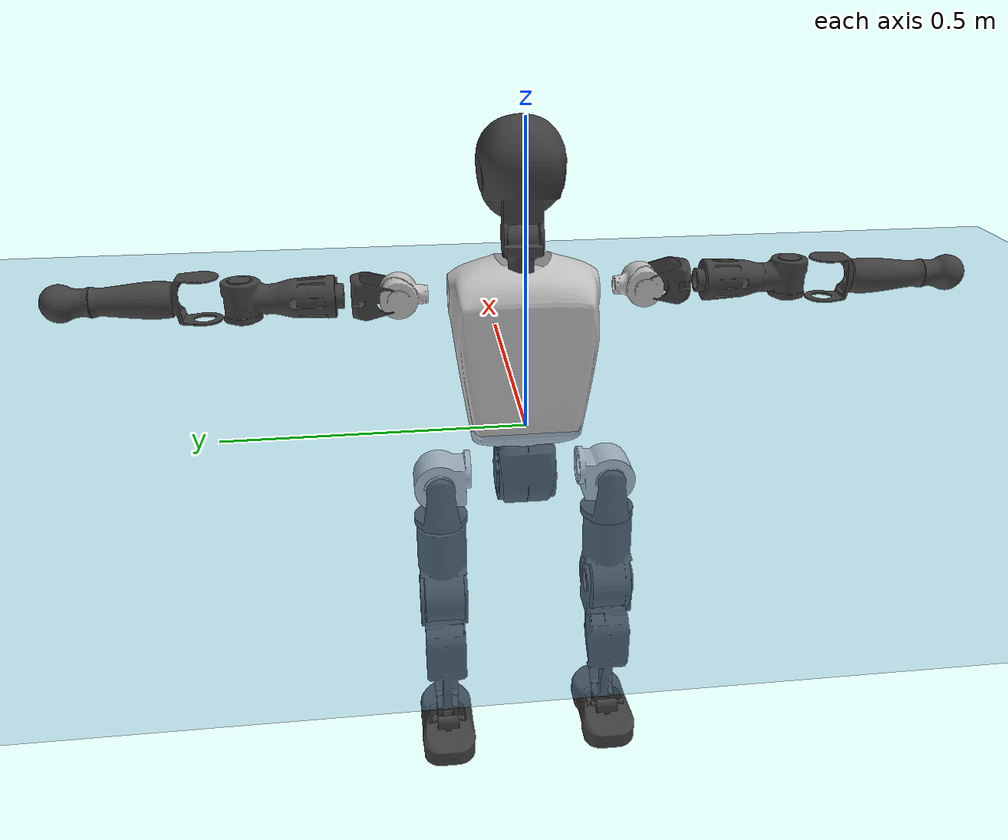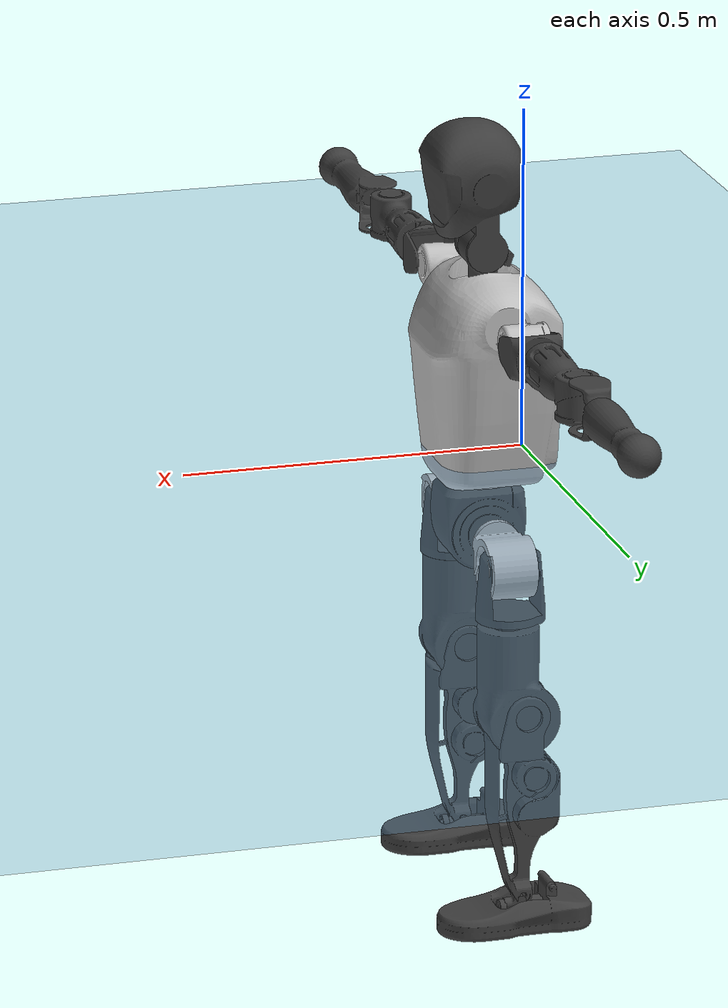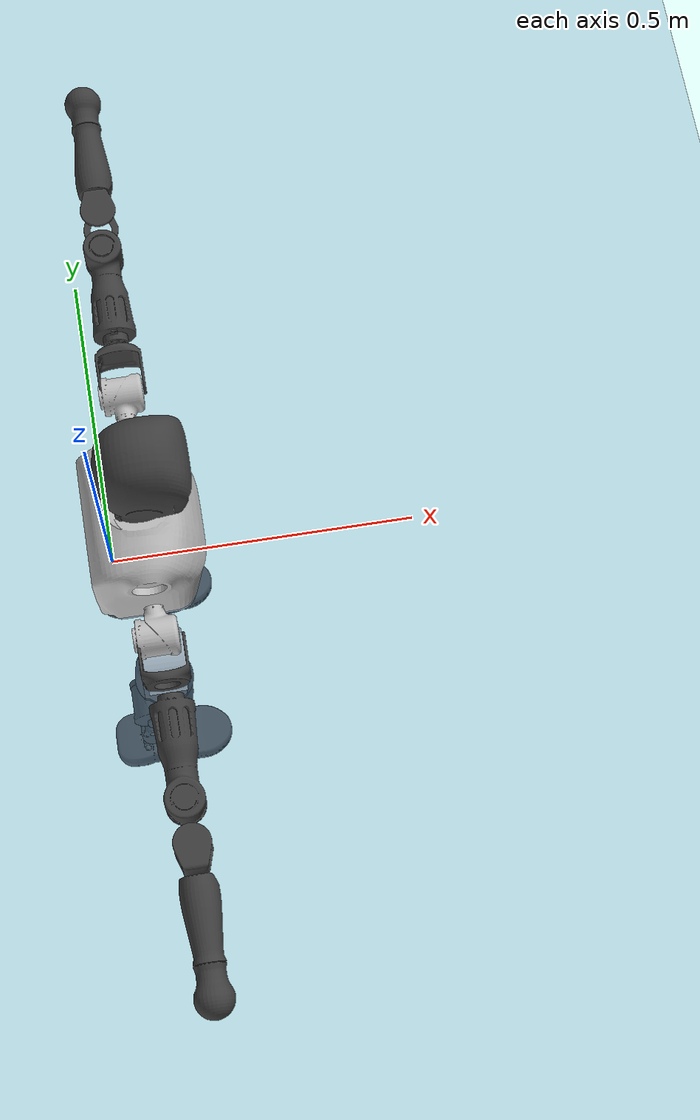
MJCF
<mujoco model="T1">
  <compiler angle="radian" assetdir="assets" balanceinertia="true" inertiafromgeom="false"/>

  <option timestep="0.005" density="1.2" viscosity="2e-05"/>

  <size nkey="1"/>

  <visual>
    <quality shadowsize="8192"/>
    <map shadowclip="0.5"/>
  </visual>

  <default>
    <default class="/">
      <joint armature="0.01" damping="0.01" frictionloss="0.1"/>
      <geom contype="0" conaffinity="0" group="1" solref="-1000 -80"/>
      <site size="0.01 0.005 0.005" group="5"/>
      <general forcelimited="true" biastype="affine" gainprm="25" biasprm="0 -25 -0.6"/>
      <default class="t1">
        <geom rgba="0.25 0.25 0.25 1"/>
        <default class="visual">
          <geom type="mesh" group="2"/>
        </default>
        <default class="collision">
          <geom group="3"/>
        </default>
        <default class="foot">
          <geom size="0.1115 0.05 0.015" type="box" condim="6" group="4" priority="1" solimp="0.015 1 0.015"/>
        </default>
        <default class="reward_collision_sphere">
          <geom group="5" rgba="1 0 0 1"/>
        </default>
      </default>
    </default>
  </default>

  <asset>
    <texture type="skybox" colorspace="auto" name="//unnamed_texture_0" builtin="gradient" rgb1="0.95 0.95 0.95" rgb2="0.95 0.95 0.95" width="100" height="600"/>
    <texture type="2d" colorspace="auto" name="texplane" builtin="checker" rgb1="0.345 0.575 0.748" rgb2="0.345 0.575 0.748" markrgb="1 1 1" width="512" height="512"/>
    <material name="MatPlane" class="/" texture="texplane" texuniform="true" texrepeat="2 2" specular="0.9"/>
    <mesh name="Trunk" class="/" file="Trunk.stl"/>
    <mesh name="H1" class="/" file="H1.stl"/>
    <mesh name="H2" class="/" file="H2.stl"/>
    <mesh name="AL1" class="/" file="AL1.stl"/>
    <mesh name="AL2" class="/" file="AL2.stl"/>
    <mesh name="AL3" class="/" file="AL3.stl"/>
    <mesh name="left_hand_link" class="/" file="left_hand_link.stl"/>
    <mesh name="AR1" class="/" file="AR1.stl"/>
    <mesh name="AR2" class="/" file="AR2.stl"/>
    <mesh name="AR3" class="/" file="AR3.stl"/>
    <mesh name="right_hand_link" class="/" file="right_hand_link.stl"/>
    <mesh name="Waist" class="/" file="Waist.stl"/>
    <mesh name="Hip_Pitch_Left" class="/" file="Hip_Pitch_Left.stl"/>
    <mesh name="Hip_Roll_Left" class="/" file="Hip_Roll_Left.stl"/>
    <mesh name="Hip_Yaw_Left" class="/" file="Hip_Yaw_Left.stl"/>
    <mesh name="Shank_Left" class="/" file="Shank_Left.stl"/>
    <mesh name="Ankle_Cross_Left" class="/" file="Ankle_Cross_Left.stl"/>
    <mesh name="left_foot_link" class="/" file="left_foot_link.stl"/>
    <mesh name="Hip_Pitch_Right" class="/" file="Hip_Pitch_Right.stl"/>
    <mesh name="Hip_Roll_Right" class="/" file="Hip_Roll_Right.stl"/>
    <mesh name="Hip_Yaw_Right" class="/" file="Hip_Yaw_Right.stl"/>
    <mesh name="Shank_Right" class="/" file="Shank_Right.stl"/>
    <mesh name="Ankle_Cross_Right" class="/" file="Ankle_Cross_Right.stl"/>
    <mesh name="right_foot_link" class="/" file="right_foot_link.stl"/>
  </asset>

  <worldbody>
    <geom name="floor" class="/" size="100 100 0.125" type="plane" group="0" material="MatPlane"/>
    <light name="toplight_shadow" class="/" pos="0 0 5" dir="0.0990148 0.0990148 -0.990148" type="directional" ambient="0.04 0.04 0.04" diffuse="0.55 0.55 0.55" specular="0.12 0.12 0.12"/>
    <light name="toplight_fill" class="/" pos="0 0 5" dir="0.0990148 0.0990148 -0.990148" type="directional" castshadow="false" ambient="0.04 0.04 0.04" diffuse="0.3 0.3 0.3" specular="0.08 0.08 0.08"/>
    <body name="trunk" childclass="t1" pos="0.000372604 -0.00206281 -0.00224921" quat="1 -1.10489e-06 -1.39232e-05 3.69827e-05">
      <inertial pos="0.0548365 -0.00504466 0.102322" quat="0.999954 0.000183295 -0.0095268 -0.000958995" mass="17.2728" diaginertia="0.0901517 0.459896 0.0537904"/>
      <joint name="//unnamed_joint_0" type="free" armature="0" damping="0" frictionloss="0"/>
      <geom name="//unnamed_geom_1" class="visual" rgba="0.76 0.76 0.76 1" mesh="Trunk"/>
      <geom name="//unnamed_geom_2" class="collision" size="0.085881 0.114508 0.171762" pos="0.0600014 0 0.12036" type="box"/>
      <geom name="//unnamed_geom_3" class="reward_collision_sphere" size="0.131684" pos="0.0600014 0 0.1003"/>
      <geom name="//unnamed_geom_4" class="reward_collision_sphere" size="0.0171762" pos="0.0600014 0.121738 0"/>
      <geom name="//unnamed_geom_5" class="reward_collision_sphere" size="0.0171762" pos="0.0600014 -0.121738 0"/>
      <geom name="//unnamed_geom_6" class="reward_collision_sphere" size="0.0171762" pos="0.0600014 0.153247 0.180541"/>
      <geom name="//unnamed_geom_7" class="reward_collision_sphere" size="0.0171762" pos="0.0600014 -0.153247 0.180541"/>
      <site name="imu" pos="-0.00300006 -0.00663114 0.0124836" size="0.0114508"/>
      <camera name="track" pos="0 -2.86443 0" quat="0.707107 0.707107 0 0" mode="trackcom"/>
      <camera name="ego_camera" pos="0.122003 0 0.421262" quat="-0.5 -0.5 0.5 0.5"/>
      <body name="H1" pos="0.0598031 0.00236549 0.240685" quat="1 1.74493e-06 -6.03777e-05 7.99151e-05">
        <inertial pos="-0.0010836 -0.00716724 0.0552032" quat="0.772031 -0.0145183 -0.00349433 0.635409" mass="0.669936" diaginertia="0.000251087 0.00134497 0.000149533"/>
        <joint name="AAHead_yaw" pos="0 0 0" axis="-0.0079839 -0.00360877 0.999962" range="-1.56631 1.63724" armature="0.0107942" damping="0.00570612" frictionloss="0.146422"/>
        <geom name="//unnamed_geom_8" class="visual" mesh="H1"/>
        <body name="H2" pos="0.00173762 -0.00224451 0.0640117" quat="1 6.16546e-05 -0.000390809 -2.6532e-05">
          <inertial pos="0.00479257 0.00529927 0.0967442" quat="0.989974 0.0898154 -0.0811061 -0.0728421" mass="0.94944" diaginertia="0.00203394 0.011678 0.00173708"/>
          <joint name="Head_pitch" pos="0 0 0" axis="0.00264461 -0.999932 0.0113707" range="-1.23561 0.362664" armature="0.0120342" damping="0.00561465" frictionloss="0.115241"/>
          <geom name="//unnamed_geom_9" class="visual" mesh="H2"/>
          <geom name="//unnamed_geom_10" class="collision" size="0.0916064" pos="0.0100002 0 0.11033"/>
          <geom name="//unnamed_geom_11" class="reward_collision_sphere" size="0.103057" pos="0.0200005 0 0.1003"/>
        </body>
      </body>
      <body name="AL1" pos="0.0582317 0.154146 0.218889" quat="0.999998 0.000119569 0.00155742 0.00113121">
        <inertial pos="-0.00127328 0.0628794 -0.00191963" quat="0.490647 0.498764 -0.5168 0.493374" mass="0.783769" diaginertia="0.00138964 0.00737722 0.000298727"/>
        <joint name="Left_Shoulder_Pitch" pos="0 0 0" axis="-0.00141078 0.999999 -0.000404291" range="-3.25199 1.17475" armature="0.0111981" damping="0" frictionloss="0.1128"/>
        <geom name="//unnamed_geom_12" class="visual" rgba="0.76 0.76 0.76 1" mesh="AL1"/>
        <body name="AL2" pos="0.00132049 0.0652325 0.000320655" quat="1 9.24776e-05 -4.99948e-05 0.000214851">
          <inertial pos="0.000373263 0.049528 0.00067152" quat="0.482061 0.494789 -0.506679 0.515827" mass="0.248411" diaginertia="0.000406989 0.00211057 0.000174473"/>
          <joint name="Left_Shoulder_Roll" pos="0 0 0" axis="-0.999975 -0.00390166 0.00587139" stiffness="0.0017512" range="-1.56444 1.74822" armature="0.0131766" damping="0.0110222" frictionloss="0.100261"/>
          <geom name="//unnamed_geom_13" class="visual" mesh="AL2"/>
          <body name="AL3" pos="6.02489e-05 0.0813652 0.00113404" quat="1 -8.30066e-05 -0.000174119 0.000148873">
            <inertial pos="0.00392807 0.123188 -0.000485152" quat="0.706077 0.708134 0.00103914 -0.000317708" mass="1.47177" diaginertia="0.0121585 0.0774551 0.000633093"/>
            <joint name="Left_Elbow_Pitch" pos="0 0 0" axis="0.00542505 -0.99998 -0.0031249" stiffness="0.00294184" range="-2.22931 2.19549" armature="0.00989659" damping="0.0085221" frictionloss="0.115522"/>
            <geom name="//unnamed_geom_14" class="visual" mesh="AL3"/>
            <geom name="//unnamed_geom_15" class="collision" size="0.0343524 0.085881" pos="0 0.0716107 0" quat="0.707105 0.707108 0 0" type="cylinder"/>
            <geom name="//unnamed_geom_16" class="reward_collision_sphere" size="0.0412229"/>
            <body name="left_hand_link" pos="0.00151793 0.207158 0.0044637" quat="0.999999 0.00114106 -7.84231e-05 -0.000297901">
              <inertial pos="0.000745628 0.15486 0.00188488" quat="0.705749 0.708362 -0.0118428 -0.000678561" mass="0.505633" diaginertia="0.00836055 0.0489017 0.000212389"/>
              <joint name="Left_Elbow_Yaw" pos="0 0 0" axis="-0.0045735 0.00782176 0.999959" range="-2.36982 -0.0129527" armature="0.0116694" damping="0.0340578" frictionloss="0.105264"/>
              <geom name="//unnamed_geom_17" class="visual" mesh="left_hand_link"/>
              <geom name="//unnamed_geom_18" class="collision" size="0.0343524 0.100195" pos="0 0.186188 0" quat="0.707105 0.707108 0 0" type="cylinder"/>
              <geom name="//unnamed_geom_19" class="reward_collision_sphere" size="0.057254"/>
              <geom name="//unnamed_geom_20" class="reward_collision_sphere" size="0.0400778" pos="0 0.157544 0"/>
              <geom name="//unnamed_geom_21" class="reward_collision_sphere" size="0.0400778" pos="0 0.307926 0"/>
            </body>
          </body>
        </body>
      </body>
      <body name="AR1" pos="0.059677 -0.151143 0.221876" quat="1 -1.01863e-05 0.000382128 1.82539e-05">
        <inertial pos="-0.00107366 -0.0649763 0.00377607" quat="0.513488 0.502624 -0.502002 0.481345" mass="0.789787" diaginertia="0.0013918 0.00810477 0.00030187"/>
        <joint name="Right_Shoulder_Pitch" pos="0 0 0" axis="-0.000781706 -0.999996 -0.00257713" range="-1.21413 3.32054" armature="0.0124017" damping="0.0241887" frictionloss="0.139155"/>
        <geom name="//unnamed_geom_22" class="visual" rgba="0.76 0.76 0.76 1" mesh="AR1"/>
        <body name="AR2" pos="0.00419857 -0.0670185 0.00249034" quat="1 -0.000660003 2.9601e-05 -4.40575e-05">
          <inertial pos="0.00320435 -0.0492177 0.0028844" quat="0.511303 0.4951 -0.496736 0.496687" mass="0.251214" diaginertia="0.000414071 0.00219434 0.000184151"/>
          <joint name="Right_Shoulder_Roll" pos="0 0 0" axis="-0.999967 -0.00797129 -0.00136733" range="-1.73316 1.57749" armature="0.0112941" damping="0.0323463" frictionloss="0.128765"/>
          <geom name="//unnamed_geom_23" class="visual" mesh="AR2"/>
          <body name="AR3" pos="0.00231003 -0.0848578 -0.0019256" quat="1 -0.000120393 3.95339e-05 8.4199e-05">
            <inertial pos="0.00227243 -0.123765 -0.00239013" quat="0.708081 0.706131 -3.04176e-05 -8.58564e-05" mass="1.54219" diaginertia="0.0129607 0.0821012 0.000616574"/>
            <joint name="Right_Elbow_Pitch" pos="0 0 0" axis="-0.000749866 0.999944 -0.0105798" range="-2.31375 2.31353" armature="0.0117017" damping="0.00938607" frictionloss="0.128604"/>
            <geom name="//unnamed_geom_24" class="visual" mesh="AR3"/>
            <geom name="//unnamed_geom_25" class="collision" size="0.0343524 0.085881" pos="0 -0.0716107 0" quat="0.707105 0.707108 0 0" type="cylinder"/>
            <geom name="//unnamed_geom_26" class="reward_collision_sphere" size="0.0412229"/>
            <body name="right_hand_link" pos="0.0017591 -0.211874 -0.00484764" quat="1 8.05495e-05 -4.12507e-05 -8.71955e-06">
              <inertial pos="0.000365319 -0.157481 0.00252773" quat="0.709569 0.704536 0.00936252 0.00728695" mass="0.480657" diaginertia="0.00849071 0.0509938 0.000216478"/>
              <joint name="Right_Elbow_Yaw" pos="0 0 0" axis="-0.000701146 5.35344e-06 1" range="-0.00520554 2.44622" armature="0.0106652" damping="0.0203973" frictionloss="0.092052"/>
              <geom name="//unnamed_geom_27" class="visual" mesh="right_hand_link"/>
              <geom name="//unnamed_geom_28" class="collision" size="0.0343524 0.100195" pos="0 -0.186188 0" quat="0.707105 0.707108 0 0" type="cylinder"/>
              <geom name="//unnamed_geom_29" class="reward_collision_sphere" size="0.057254"/>
              <geom name="//unnamed_geom_30" class="reward_collision_sphere" size="0.0400778" pos="0 -0.157544 0"/>
              <geom name="//unnamed_geom_31" class="reward_collision_sphere" size="0.0400778" pos="0 -0.307926 0"/>
            </body>
          </body>
        </body>
      </body>
      <body name="Waist" pos="0.0632453 -0.00385673 -0.110998" quat="0.999999 0.000816434 -0.000459453 -0.000460621">
        <inertial pos="0.0081109 0.00229885 0.0100411" quat="0.985257 -0.00102404 -0.17107 0.00188266" mass="3.90718" diaginertia="0.00566448 0.031452 0.00491245"/>
        <joint name="Waist" pos="0 0 0" axis="1.71113e-05 -0.0116941 0.999932" range="-1.58376 1.55399" armature="0.0111302" damping="0.0154081" frictionloss="0.114912"/>
        <geom name="//unnamed_geom_32" class="visual" mesh="Waist"/>
        <body name="Hip_Pitch_Left" pos="0.00302321 0.152201 0.00326411" quat="0.999999 0.00137788 -0.00012036 0.000527398">
          <inertial pos="-0.000313203 -0.0122027 -0.0187748" quat="0.975077 0.221174 0.0174825 0.00103467" mass="1.44377" diaginertia="0.00177906 0.00867649 0.00124765"/>
          <joint name="Left_Hip_Pitch" pos="0 0 0" axis="0.00255 0.999997 1.30274e-05" stiffness="0.00162894" range="-1.80572 1.49632" armature="0.00901578" damping="0.0159402" frictionloss="0.126679"/>
          <geom name="//unnamed_geom_33" class="visual" rgba="0.76 0.76 0.76 1" mesh="Hip_Pitch_Left"/>
          <body name="Hip_Roll_Left" pos="-0.00367381 -0.00134732 -0.0200533" quat="1 -0.000202071 0.000555737 -0.000463888">
            <inertial pos="1.39768e-05 0.000402715 -0.0524862" quat="0.699135 0.0088105 -0.0183768 0.714699" mass="0.625041" diaginertia="0.00183286 0.00949821 0.000531388"/>
            <joint name="Left_Hip_Roll" pos="0 0 0" axis="-0.999923 0.000330603 0.0124384" range="-1.57026 0.249162" armature="0.00949945" damping="0" frictionloss="0.110933"/>
            <geom name="//unnamed_geom_34" class="visual" mesh="Hip_Roll_Left"/>
            <geom name="//unnamed_geom_35" class="reward_collision_sphere" size="0.0629794"/>
            <body name="Hip_Yaw_Left" pos="0.000531049 -1.92439e-05 -0.0883918" quat="0.999999 -0.000310078 0.00120218 7.69264e-05">
              <inertial pos="-0.00466045 0.00234144 -0.091998" quat="0.692831 -0.0319522 -0.0237685 0.719999" mass="3.15951" diaginertia="0.0253294 0.160348 0.00259293"/>
              <joint name="Left_Hip_Yaw" pos="0 0 0" axis="0.00826454 -0.00398148 -0.999958" range="-1.01758 0.943307" armature="0.0111882" damping="0" frictionloss="0.119404"/>
              <geom name="//unnamed_geom_36" class="visual" mesh="Hip_Yaw_Left"/>
              <geom name="//unnamed_geom_37" class="collision" size="0.057254 0.0916064" type="cylinder"/>
              <body name="Shank_Left" pos="-0.0187461 0.000858634 -0.127713" quat="1 -0.000564942 -0.000284533 0.000277999">
                <inertial pos="-0.00834968 -0.00204663 -0.127763" quat="0.997685 0.00106477 -0.0229281 0.0640191" mass="2.76121" diaginertia="0.0342224 0.201756 0.00193607"/>
                <joint name="Left_Knee_Pitch" pos="0 0 0" axis="-0.0153202 0.999822 -0.0110265" range="0.0226056 2.30927" armature="0.0118111" damping="0.00612241" frictionloss="0.10012"/>
                <geom name="//unnamed_geom_38" class="visual" mesh="Shank_Left"/>
                <geom name="//unnamed_geom_39" class="collision" size="0.057254 0.085881" pos="0 0 -0.12036" type="cylinder"/>
                <geom name="//unnamed_geom_40" class="reward_collision_sphere" size="0.0744302"/>
                <body name="Ankle_Cross_Left" pos="0.00334639 0.00130098 -0.284519" quat="0.999999 -6.992e-05 0.00109421 -7.63903e-05">
                  <inertial pos="-0.00513179 -0.0010001 -0.00725309" quat="0.441925 0.556259 0.54907 0.440228" mass="0.104893" diaginertia="2.75173e-05 0.000151144 1.12992e-05"/>
                  <joint name="Left_Ankle_Pitch" pos="0 0 0" axis="-0.000240718 1 0.000339814" stiffness="0.00398191" range="-0.943691 0.395337" armature="0.01093" damping="0" frictionloss="0.128016"/>
                  <geom name="//unnamed_geom_41" class="visual" mesh="Ankle_Cross_Left"/>
                  <body name="left_foot_link" pos="-0.00256065 0.00057166 -0.016761" quat="1 0.000380086 0.00039638 0.000294737">
                    <inertial pos="0.00106031 0.000403424 -0.00707518" quat="-0.00565686 0.61266 0.00143568 0.790325" mass="1.07803" diaginertia="0.00289998 0.0149529 0.00213934"/>
                    <joint name="Left_Ankle_Roll" pos="0 0 0" axis="-0.999926 0.0101971 -0.00665718" range="-0.416063 0.439834" armature="0.0112541" damping="0" frictionloss="0.116172"/>
                    <geom name="//unnamed_geom_42" class="visual" mesh="left_foot_link"/>
                    <geom name="left_foot" class="foot" size="0.122465 0.0449126 0.0181872" pos="0.0100002 0 -0.0150451"/>
                    <geom name="//unnamed_geom_44" class="reward_collision_sphere" size="0.0595442" pos="0.0100002 0 -0.0150451"/>
                    <geom name="//unnamed_geom_45" class="reward_collision_sphere" size="0.0343524" pos="0.0950022 -0.0329409 -0.0150451"/>
                    <geom name="//unnamed_geom_46" class="reward_collision_sphere" size="0.0343524" pos="-0.0700017 -0.0329409 -0.0150451"/>
                    <site name="left_foot" class="foot" pos="0.0100002 0 -0.0150451" size="0.0114508"/>
                  </body>
                </body>
              </body>
            </body>
          </body>
        </body>
        <body name="Hip_Pitch_Right" pos="-0.00236918 -0.14936 0.00230675" quat="0.999999 -0.00143182 -0.000604105 0.000635971">
          <inertial pos="0.00229071 0.00845769 -0.02081" quat="0.973937 -0.226293 0.00735054 -0.0135655" mass="1.52825" diaginertia="0.0017976 0.00848102 0.00134527"/>
          <joint name="Right_Hip_Pitch" pos="0 0 0" axis="-0.0107459 -0.999941 0.00178522" stiffness="0.00852612" range="-1.57819 1.89642" armature="0.0116962" damping="0.00983744" frictionloss="0.110404"/>
          <geom name="//unnamed_geom_47" class="visual" rgba="0.76 0.76 0.76 1" mesh="Hip_Pitch_Right"/>
          <body name="Hip_Roll_Right" pos="-0.00432147 9.95308e-05 -0.0174398" quat="1 -1.485e-05 0.00029018 0.000457815">
            <inertial pos="0.000202149 0.00215313 -0.0539022" quat="0.699176 -0.0250852 -0.00206886 0.714506" mass="0.572029" diaginertia="0.00173578 0.00899312 0.000535757"/>
            <joint name="Right_Hip_Roll" pos="0 0 0" axis="-0.999964 0.00651261 -0.00545228" range="-0.307519 1.51334" armature="0.011249" damping="0.00503544" frictionloss="0.119743"/>
            <geom name="//unnamed_geom_48" class="visual" mesh="Hip_Roll_Right"/>
            <geom name="//unnamed_geom_49" class="reward_collision_sphere" size="0.0629794"/>
            <body name="Hip_Yaw_Right" pos="-0.000957192 -0.00246295 -0.0794946" quat="0.999999 -7.81404e-05 -0.000754769 -0.000765417">
              <inertial pos="-0.00788025 -0.000924839 -0.085656" quat="0.714781 -0.0240266 -0.0419426 0.697676" mass="3.46281" diaginertia="0.0267849 0.158219 0.00270194"/>
              <joint name="Right_Hip_Yaw" pos="0 0 0" axis="0.0160485 0.0233005 -0.9996" range="-0.965789 1.04814" armature="0.0099209" damping="0.0337004" frictionloss="0.114394"/>
              <geom name="//unnamed_geom_50" class="visual" mesh="Hip_Yaw_Right"/>
              <geom name="//unnamed_geom_51" class="collision" size="0.057254 0.0916064" type="cylinder"/>
              <body name="Shank_Right" pos="-0.0128457 -0.00156032 -0.136839" quat="1 0.000153548 -4.33106e-05 -0.000185041">
                <inertial pos="-0.0055145 -0.00176777 -0.121443" quat="0.999261 -0.00631178 -0.0279398 -0.0256505" mass="2.49713" diaginertia="0.0318479 0.195192 0.00185154"/>
                <joint name="Right_Knee_Pitch" pos="0 0 0" axis="0.00503126 -0.999961 -0.00730651" range="-2.4117 0.0319715" armature="0.00896598" damping="0.0098677" frictionloss="0.113921"/>
                <geom name="//unnamed_geom_52" class="visual" mesh="Shank_Right"/>
                <geom name="//unnamed_geom_53" class="collision" size="0.057254 0.085881" pos="0 0 -0.12036" type="cylinder"/>
                <geom name="//unnamed_geom_54" class="reward_collision_sphere" size="0.0744302"/>
                <body name="Ankle_Cross_Right" pos="-0.000292226 0.00220802 -0.277613" quat="1 -2.74801e-05 5.01248e-05 2.71411e-05">
                  <inertial pos="-0.00316448 0.000145904 -0.00820679" quat="0.446329 0.553673 0.553106 0.433948" mass="0.113395" diaginertia="2.82184e-05 0.000150503 1.18672e-05"/>
                  <joint name="Right_Ankle_Pitch" pos="0 0 0" axis="0.00411227 -0.999991 -0.00127495" stiffness="0.0139104" range="-0.299872 0.924561" armature="0.0115963" damping="0.0181062" frictionloss="0.100055"/>
                  <geom name="//unnamed_geom_55" class="visual" mesh="Ankle_Cross_Right"/>
                  <body name="right_foot_link" pos="-0.00359888 -0.000748171 -0.0109881" quat="1 0.000120495 3.99612e-05 -0.000192035">
                    <inertial pos="0.00454796 -0.00237645 -0.00958528" quat="0.000169188 0.621152 -0.00405691 0.783679" mass="1.02676" diaginertia="0.00273602 0.014675 0.00226682"/>
                    <joint name="Right_Ankle_Roll" pos="0 0 0" axis="-0.999997 -0.00203715 -0.000981768" range="-0.357049 0.436892" armature="0.0124937" damping="0.0251466" frictionloss="0.127041"/>
                    <geom name="//unnamed_geom_56" class="visual" mesh="right_foot_link"/>
                    <geom name="right_foot" class="foot" size="0.0946464 0.0509281 0.0158763" pos="0.0100002 0 -0.0150451"/>
                    <geom name="//unnamed_geom_58" class="reward_collision_sphere" size="0.0458032"/>
                    <geom name="//unnamed_geom_59" class="reward_collision_sphere" size="0.0343524" pos="0.0100002 0 -0.0150451"/>
                    <geom name="//unnamed_geom_60" class="reward_collision_sphere" size="0.0343524" pos="0.0950022 0.0329409 -0.0150451"/>
                    <geom name="//unnamed_geom_61" class="reward_collision_sphere" size="0.0343524" pos="-0.0700017 0.0329409 -0.0150451"/>
                    <site name="right_foot" class="foot" pos="0.0100002 0 -0.0150451" size="0.0114508"/>
                  </body>
                </body>
              </body>
            </body>
          </body>
        </body>
      </body>
    </body>
  </worldbody>

  <contact>
    <pair class="/" geom1="floor" geom2="left_foot" name="//unnamed_contact_0"/>
    <pair class="/" geom1="floor" geom2="right_foot" name="//unnamed_contact_1"/>
  </contact>

  <actuator>
    <general name="AAHead_yaw" class="/" joint="AAHead_yaw" forcerange="-8.77812 8.77812" gainprm="29.3198" biasprm="0 -29.3198 -0.62764"/>
    <general name="Head_pitch" class="/" joint="Head_pitch" forcerange="-8.14257 8.14257" gainprm="29.3198" biasprm="0 -29.3198 -0.62764"/>
    <general name="Left_Shoulder_Pitch" class="/" joint="Left_Shoulder_Pitch" forcerange="-20.0997 20.0997" gainprm="29.3198" biasprm="0 -29.3198 -0.62764"/>
    <general name="Left_Shoulder_Roll" class="/" joint="Left_Shoulder_Roll" forcerange="-18.6534 18.6534" gainprm="29.3198" biasprm="0 -29.3198 -0.62764"/>
    <general name="Left_Elbow_Pitch" class="/" joint="Left_Elbow_Pitch" forcerange="-20.4208 20.4208" gainprm="29.3198" biasprm="0 -29.3198 -0.62764"/>
    <general name="Left_Elbow_Yaw" class="/" joint="Left_Elbow_Yaw" forcerange="-18.9616 18.9616" gainprm="29.3198" biasprm="0 -29.3198 -0.62764"/>
    <general name="Right_Shoulder_Pitch" class="/" joint="Right_Shoulder_Pitch" forcerange="-22.6798 22.6798" gainprm="29.3198" biasprm="0 -29.3198 -0.62764"/>
    <general name="Right_Shoulder_Roll" class="/" joint="Right_Shoulder_Roll" forcerange="-20.0031 20.0031" gainprm="29.3198" biasprm="0 -29.3198 -0.62764"/>
    <general name="Right_Elbow_Pitch" class="/" joint="Right_Elbow_Pitch" forcerange="-17.7378 17.7378" gainprm="29.3198" biasprm="0 -29.3198 -0.62764"/>
    <general name="Right_Elbow_Yaw" class="/" joint="Right_Elbow_Yaw" forcerange="-22.2557 22.2557" gainprm="29.3198" biasprm="0 -29.3198 -0.62764"/>
    <general name="Waist" class="/" joint="Waist" forcerange="-37.3456 37.3456" gainprm="29.3198" biasprm="0 -29.3198 -0.62764"/>
    <general name="Left_Hip_Pitch" class="/" joint="Left_Hip_Pitch" forcerange="-51.5945 51.5945" gainprm="29.3198" biasprm="0 -29.3198 -0.62764"/>
    <general name="Left_Hip_Roll" class="/" joint="Left_Hip_Roll" forcerange="-32.6017 32.6017" gainprm="29.3198" biasprm="0 -29.3198 -0.62764"/>
    <general name="Left_Hip_Yaw" class="/" joint="Left_Hip_Yaw" forcerange="-36.9131 36.9131" gainprm="29.3198" biasprm="0 -29.3198 -0.62764"/>
    <general name="Left_Knee_Pitch" class="/" joint="Left_Knee_Pitch" forcerange="-73.7128 73.7128" gainprm="29.3198" biasprm="0 -29.3198 -0.62764"/>
    <general name="Left_Ankle_Pitch" class="/" joint="Left_Ankle_Pitch" forcerange="-23.5518 23.5518" gainprm="29.3198" biasprm="0 -29.3198 -0.62764"/>
    <general name="Left_Ankle_Roll" class="/" joint="Left_Ankle_Roll" forcerange="-15.4051 15.4051" gainprm="29.3198" biasprm="0 -29.3198 -0.62764"/>
    <general name="Right_Hip_Pitch" class="/" joint="Right_Hip_Pitch" forcerange="-51.6446 51.6446" gainprm="29.3198" biasprm="0 -29.3198 -0.62764"/>
    <general name="Right_Hip_Roll" class="/" joint="Right_Hip_Roll" forcerange="-33.642 33.642" gainprm="29.3198" biasprm="0 -29.3198 -0.62764"/>
    <general name="Right_Hip_Yaw" class="/" joint="Right_Hip_Yaw" forcerange="-28.9638 28.9638" gainprm="29.3198" biasprm="0 -29.3198 -0.62764"/>
    <general name="Right_Knee_Pitch" class="/" joint="Right_Knee_Pitch" forcerange="-68.5696 68.5696" gainprm="29.3198" biasprm="0 -29.3198 -0.62764"/>
    <general name="Right_Ankle_Pitch" class="/" joint="Right_Ankle_Pitch" forcerange="-20.7968 20.7968" gainprm="29.3198" biasprm="0 -29.3198 -0.62764"/>
    <general name="Right_Ankle_Roll" class="/" joint="Right_Ankle_Roll" forcerange="-16.9337 16.9337" gainprm="29.3198" biasprm="0 -29.3198 -0.62764"/>
  </actuator>

  <sensor>
    <gyro site="imu" name="imu_angular_velocity"/>
    <velocimeter site="imu" name="imu_linear_velocity"/>
    <framelinvel objtype="site" objname="left_foot" name="left_foot_global_linear_velocity"/>
    <framelinvel objtype="site" objname="right_foot" name="right_foot_global_linear_velocity"/>
  </sensor>

  <keyframe>
    <key name="home" qpos="0 0 0.6385 1 0 0 0 0 0 0 1.4 0 -0.4 0 -1.4 0 0.4 0 -0.4 0 0 0.8 -0.4 0 0.4 0 0 -0.8 0.4 0"/>
  </keyframe>
</mujoco>
